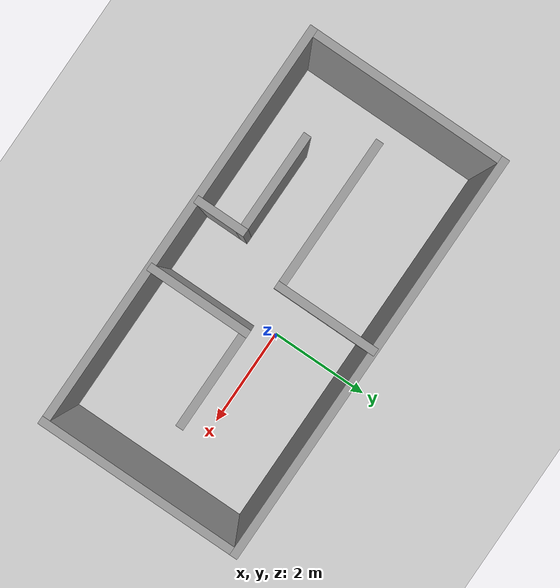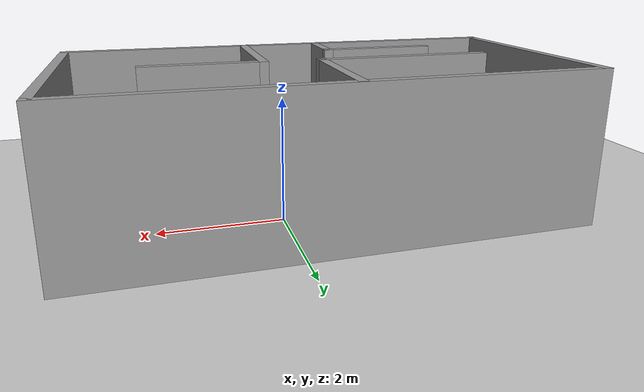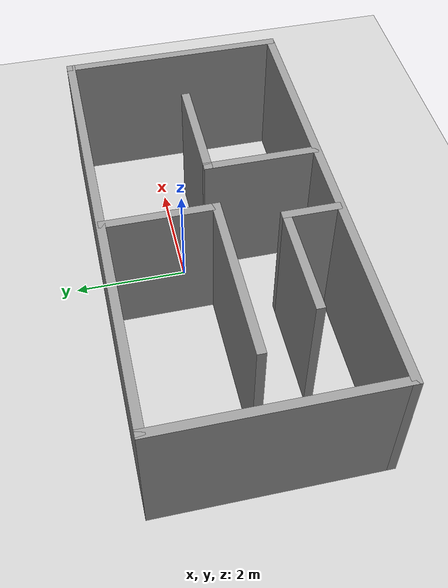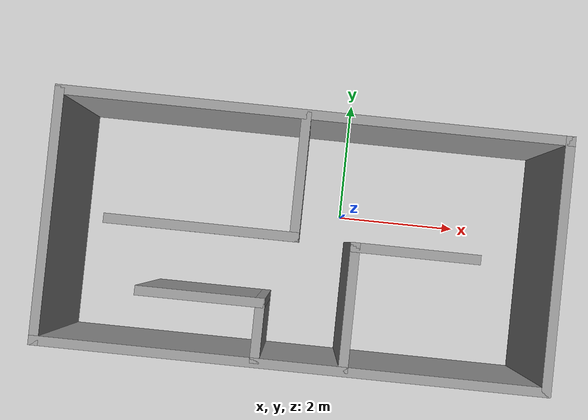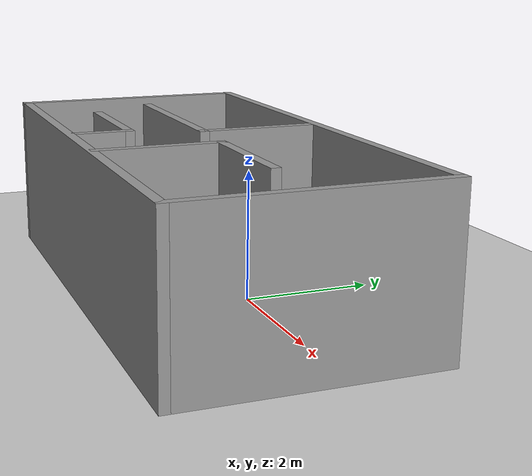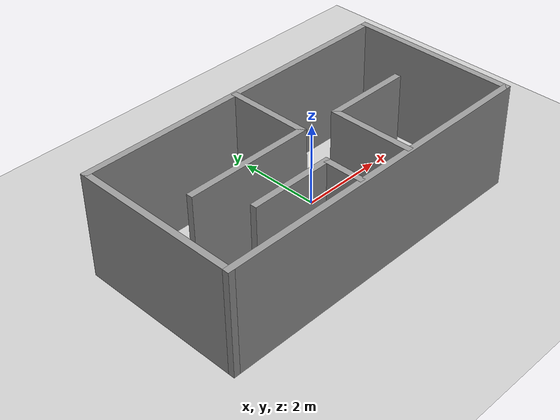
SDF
<sdf version="1.7">
 <world name="default">
  <light name="sun" type="directional">
   <pose>0 0 10 0 -0 0</pose>
   <diffuse>0.8 0.8 0.8 1</diffuse>
   <specular>0.2 0.2 0.2 1</specular>
   <attenuation>
    <range>1000</range>
    <constant>0.9</constant>
    <linear>0.01</linear>
    <quadratic>0.001</quadratic>
   </attenuation>
   <direction>-0.5 0.1 -0.9</direction>
   <spot><inner_angle>0</inner_angle><outer_angle>0</outer_angle><falloff>0</falloff></spot>
  </light>
  <model name="ground_plane">
   <static>1</static>
   <link name="link">
    <collision name="collision">
     <geometry><plane><normal>0 0 1</normal><size>100 100</size></plane></geometry>
     <surface>
      <contact><collide_bitmask>65535</collide_bitmask></contact>
      <friction><ode><mu>100</mu><mu2>50</mu2></ode></friction>
     </surface>
    </collision>
    <visual name="visual">
     <cast_shadows>0</cast_shadows>
     <geometry><plane><normal>0 0 1</normal><size>100 100</size></plane></geometry>
     <material>
      <script><uri>file://media/materials/scripts/gazebo.material</uri><name>Gazebo/Grey</name></script>
     </material>
    </visual>
   </link>
  </model>
  <gravity>0 0 -9.8</gravity>
  <magnetic_field>6e-06 2.3e-05 -4.2e-05</magnetic_field>
  <atmosphere type="adiabatic"/>
  <physics type="ode">
   <max_step_size>0.001</max_step_size>
   <real_time_factor>1</real_time_factor>
   <real_time_update_rate>1000</real_time_update_rate>
  </physics>
  <scene><ambient>0.4 0.4 0.4 1</ambient><background>0.7 0.7 0.7 1</background><shadows>1</shadows></scene>
  <audio><device>default</device></audio>
  <spherical_coordinates>
   <surface_model>EARTH_WGS84</surface_model>
   <latitude_deg>0</latitude_deg>
   <longitude_deg>0</longitude_deg>
   <elevation>0</elevation>
   <heading_deg>0</heading_deg>
  </spherical_coordinates>
  <model name="room">
   <pose>-0.633308 -0.001006 0 0 -0 0</pose>
   <link name="Wall_13">
    <collision name="Wall_13_Collision">
     <geometry><box><size>1 0.15 2.5</size></box></geometry>
     <pose>0 0 1.25 0 -0 0</pose>
    </collision>
    <visual name="Wall_13_Visual">
     <pose>0 0 1.25 0 -0 0</pose>
     <geometry><box><size>1 0.15 2.5</size></box></geometry>
     <material>
      <script><uri>file://media/materials/scripts/gazebo.material</uri><name>Gazebo/Grey</name></script>
      <ambient>1 1 1 1</ambient>
     </material>
     <meta><layer>0</layer></meta>
    </visual>
    <pose>-0.544 -1.91507 0 0 -0 1.5708</pose>
   </link>
   <link name="Wall_14">
    <collision name="Wall_14_Collision">
     <geometry><box><size>2 0.15 2.5</size></box></geometry>
     <pose>0 0 1.25 0 -0 0</pose>
    </collision>
    <visual name="Wall_14_Visual">
     <pose>0 0 1.25 0 -0 0</pose>
     <geometry><box><size>2 0.15 2.5</size></box></geometry>
     <material>
      <script><uri>file://media/materials/scripts/gazebo.material</uri><name>Gazebo/Grey</name></script>
      <ambient>1 1 1 1</ambient>
     </material>
     <meta><layer>0</layer></meta>
    </visual>
    <pose>-1.469 -1.49007 0 0 -0 3.14159</pose>
   </link>
   <link name="Wall_19">
    <collision name="Wall_19_Collision">
     <geometry><box><size>2 0.15 2.5</size></box></geometry>
     <pose>0 0 1.25 0 -0 0</pose>
    </collision>
    <visual name="Wall_19_Visual">
     <pose>0 0 1.25 0 -0 0</pose>
     <geometry><box><size>2 0.15 2.5</size></box></geometry>
     <material>
      <script><uri>file://media/materials/scripts/gazebo.material</uri><name>Gazebo/Grey</name></script>
      <ambient>1 1 1 1</ambient>
     </material>
     <meta><layer>0</layer></meta>
    </visual>
    <pose>-0.13 0.483926 0 0 -0 -1.5708</pose>
   </link>
   <link name="Wall_20">
    <collision name="Wall_20_Collision">
     <geometry><box><size>3 0.15 2.5</size></box></geometry>
     <pose>0 0 1.25 0 -0 0</pose>
    </collision>
    <visual name="Wall_20_Visual">
     <pose>0 0 1.25 0 -0 0</pose>
     <geometry><box><size>3 0.15 2.5</size></box></geometry>
     <material>
      <script><uri>file://media/materials/scripts/gazebo.material</uri><name>Gazebo/Grey</name></script>
      <ambient>1 1 1 1</ambient>
     </material>
     <meta><layer>0</layer></meta>
    </visual>
    <pose>-1.555 -0.441074 0 0 -0 3.14159</pose>
   </link>
   <link name="Wall_23">
    <collision name="Wall_23_Collision">
     <geometry><box><size>2 0.15 2.5</size></box></geometry>
     <pose>0 0 1.25 0 -0 0</pose>
    </collision>
    <visual name="Wall_23_Visual">
     <pose>0 0 1.25 0 -0 0</pose>
     <geometry><box><size>2 0.15 2.5</size></box></geometry>
     <material>
      <script><uri>file://media/materials/scripts/gazebo.material</uri><name>Gazebo/Grey</name></script>
      <ambient>1 1 1 1</ambient>
     </material>
     <meta><layer>0</layer></meta>
    </visual>
    <pose>0.813 -1.42657 0 0 -0 1.5708</pose>
   </link>
   <link name="Wall_24">
    <collision name="Wall_24_Collision">
     <geometry><box><size>2 0.15 2.5</size></box></geometry>
     <pose>0 0 1.25 0 -0 0</pose>
    </collision>
    <visual name="Wall_24_Visual">
     <pose>0 0 1.25 0 -0 0</pose>
     <geometry><box><size>2 0.15 2.5</size></box></geometry>
     <material>
      <script><uri>file://media/materials/scripts/gazebo.material</uri><name>Gazebo/Grey</name></script>
      <ambient>1 1 1 1</ambient>
     </material>
     <meta><layer>0</layer></meta>
    </visual>
    <pose>1.738 -0.501574 0 0 -0 0</pose>
   </link>
   <link name="Wall_5">
    <collision name="Wall_5_Collision">
     <geometry><box><size>8 0.15 2.5</size></box></geometry>
     <pose>0 0 1.25 0 -0 0</pose>
    </collision>
    <visual name="Wall_5_Visual">
     <pose>0 0 1.25 0 -0 0</pose>
     <geometry><box><size>8 0.15 2.5</size></box></geometry>
     <material>
      <script><uri>file://media/materials/scripts/gazebo.material</uri><name>Gazebo/Grey</name></script>
      <ambient>1 1 1 1</ambient>
     </material>
     <meta><layer>0</layer></meta>
    </visual>
    <pose>0 1.44343 0 0 -0 0</pose>
   </link>
   <link name="Wall_6">
    <collision name="Wall_6_Collision">
     <geometry><box><size>4 0.15 2.5</size></box></geometry>
     <pose>0 0 1.25 0 -0 0</pose>
    </collision>
    <visual name="Wall_6_Visual">
     <pose>0 0 1.25 0 -0 0</pose>
     <geometry><box><size>4 0.15 2.5</size></box></geometry>
     <material>
      <script><uri>file://media/materials/scripts/gazebo.material</uri><name>Gazebo/Grey</name></script>
      <ambient>1 1 1 1</ambient>
     </material>
     <meta><layer>0</layer></meta>
    </visual>
    <pose>3.925 -0.481574 0 0 -0 -1.5708</pose>
   </link>
   <link name="Wall_7">
    <collision name="Wall_7_Collision">
     <geometry><box><size>8 0.15 2.5</size></box></geometry>
     <pose>0 0 1.25 0 -0 0</pose>
    </collision>
    <visual name="Wall_7_Visual">
     <pose>0 0 1.25 0 -0 0</pose>
     <geometry><box><size>8 0.15 2.5</size></box></geometry>
     <material>
      <script><uri>file://media/materials/scripts/gazebo.material</uri><name>Gazebo/Grey</name></script>
      <ambient>1 1 1 1</ambient>
     </material>
     <meta><layer>0</layer></meta>
    </visual>
    <pose>0 -2.40657 0 0 -0 3.14159</pose>
   </link>
   <link name="Wall_8">
    <collision name="Wall_8_Collision">
     <geometry><box><size>4 0.15 2.5</size></box></geometry>
     <pose>0 0 1.25 0 -0 0</pose>
    </collision>
    <visual name="Wall_8_Visual">
     <pose>0 0 1.25 0 -0 0</pose>
     <geometry><box><size>4 0.15 2.5</size></box></geometry>
     <material>
      <script><uri>file://media/materials/scripts/gazebo.material</uri><name>Gazebo/Grey</name></script>
      <ambient>1 1 1 1</ambient>
     </material>
     <meta><layer>0</layer></meta>
    </visual>
    <pose>-3.925 -0.481574 0 0 -0 1.5708</pose>
   </link>
   <static>1</static>
  </model>
 </world>
</sdf>
